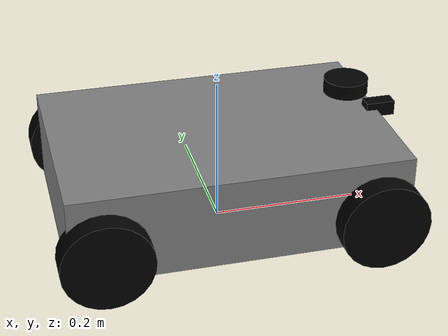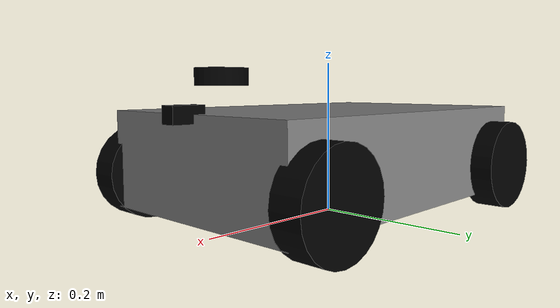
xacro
<?xml version="1.0"?>
<robot name="fusionrover" xmlns:xacro="http://www.ros.org/wiki/xacro">

  <material name="gray"><color rgba="0.5 0.5 0.5 1.0"/></material>
  <material name="black"><color rgba="0.0 0.0 0.0 1.0"/></material>

  <xacro:property name="chassis_mass"   value="10.0"/>
  <xacro:property name="chassis_length" value="0.45"/>
  <xacro:property name="chassis_width"  value="0.30"/>
  <xacro:property name="chassis_height" value="0.12"/>
  <xacro:property name="wheel_mass"     value="1.0"/>
  <xacro:property name="wheel_radius"   value="0.06"/>
  <xacro:property name="wheel_width"    value="0.04"/>
  <xacro:property name="wheel_x_offset" value="0.18"/>
  <xacro:property name="wheel_y_offset" value="0.16"/>
  <xacro:property name="ground_clearance" value="0.02"/>

  <link name="base_footprint"/>

  <joint name="base_footprint_joint" type="fixed">
    <parent link="base_footprint"/>
    <child link="base_link"/>
    <origin xyz="0 0 ${chassis_height/2 + ground_clearance}" rpy="0 0 0"/>
  </joint>

  <link name="base_link">
    <visual>
      <geometry><box size="${chassis_length} ${chassis_width} ${chassis_height}"/></geometry>
      <material name="gray"/>
    </visual>
    <collision>
      <geometry><box size="${chassis_length} ${chassis_width} ${chassis_height}"/></geometry>
    </collision>
    <inertial>
      <mass value="${chassis_mass}"/>
      <origin xyz="0 0 0" rpy="0 0 0"/>
      <inertia
        ixx="${(1/12) * chassis_mass * (chassis_width*chassis_width + chassis_height*chassis_height)}"
        ixy="0.0" ixz="0.0"
        iyy="${(1/12) * chassis_mass * (chassis_length*chassis_length + chassis_height*chassis_height)}"
        iyz="0.0"
        izz="${(1/12) * chassis_mass * (chassis_length*chassis_length + chassis_width*chassis_width)}"/>
    </inertial>
  </link>

  <link name="lidar_link">
    <visual>
      <geometry>
        <cylinder radius="0.03" length="0.02"/>
      </geometry>
      <material name="black"/>
    </visual>
    <collision>
      <geometry>
        <cylinder radius="0.03" length="0.02"/>
      </geometry>
    </collision>
    <inertial>
      <mass value="0.1"/>
      <origin xyz="0 0 0" rpy="0 0 0"/>
      <inertia ixx="0.0001" ixy="0.0" ixz="0.0"
               iyy="0.0001" iyz="0.0"
               izz="0.0001"/>
    </inertial>
  </link>

  <joint name="lidar_joint" type="fixed">
    <parent link="base_link"/>
    <child link="lidar_link"/>
    <origin xyz="0.18 0 0.10" rpy="0 0 0"/>
  </joint>

  <link name="ultrasonic_front_link">
    <visual>
      <geometry>
        <box size="0.04 0.02 0.02"/>
      </geometry>
      <material name="black"/>
    </visual>
    <collision>
      <geometry>
        <box size="0.04 0.02 0.02"/>
      </geometry>
    </collision>
    <inertial>
      <mass value="0.05"/>
      <origin xyz="0 0 0" rpy="0 0 0"/>
      <inertia ixx="0.00005" ixy="0.0" ixz="0.0"
               iyy="0.00005" iyz="0.0"
               izz="0.00005"/>
    </inertial>
  </link>

  <joint name="ultrasonic_front_joint" type="fixed">
    <parent link="base_link"/>
    <child link="ultrasonic_front_link"/>
    <origin xyz="0.23 0 0.06" rpy="0 0 0"/>
  </joint>

  <xacro:macro name="wheel" params="name x y">
    <link name="${name}">
      <visual>
        <origin rpy="${pi/2} 0 0" xyz="0 0 0"/>
        <geometry><cylinder radius="${wheel_radius}" length="${wheel_width}"/></geometry>
        <material name="black"/>
      </visual>
      <collision>
        <origin rpy="${pi/2} 0 0" xyz="0 0 0"/>
        <geometry><cylinder radius="${wheel_radius}" length="${wheel_width}"/></geometry>
      </collision>
      <inertial>
        <mass value="${wheel_mass}"/>
        <origin rpy="${pi/2} 0 0" xyz="0 0 0"/>
        <inertia
          ixx="${(1/12)*wheel_mass*(3*wheel_radius*wheel_radius + wheel_width*wheel_width)}"
          ixy="0.0" ixz="0.0"
          iyy="${(1/12)*wheel_mass*(3*wheel_radius*wheel_radius + wheel_width*wheel_width)}"
          iyz="0.0"
          izz="${(1/2)*wheel_mass*(wheel_radius*wheel_radius)}"/>
      </inertial>
    </link>

    <joint name="${name}_joint" type="continuous">
      <parent link="base_link"/>
      <child link="${name}"/>
      <origin xyz="${x} ${y} ${-(chassis_height/2 + ground_clearance - wheel_radius)}" rpy="0 0 0"/>
      <axis xyz="0 1 0"/>
    </joint>

    <gazebo reference="${name}">
      <material>Gazebo/Black</material>
      <mu1>1.0</mu1>
      <mu2>0.8</mu2>
      <minDepth>0.001</minDepth>
    </gazebo>
  </xacro:macro>

  <xacro:wheel name="front_left_wheel"  x="${wheel_x_offset}"  y="${wheel_y_offset}"/>
  <xacro:wheel name="front_right_wheel" x="${wheel_x_offset}"  y="-${wheel_y_offset}"/>
  <xacro:wheel name="rear_left_wheel"   x="-${wheel_x_offset}" y="${wheel_y_offset}"/>
  <xacro:wheel name="rear_right_wheel"  x="-${wheel_x_offset}" y="-${wheel_y_offset}"/>

  <ros2_control name="FusionRoverSystem" type="system">
    <hardware>
      <plugin>gazebo_ros2_control/GazeboSystem</plugin>
    </hardware>
    <joint name="front_left_wheel_joint">
      <command_interface name="velocity"/>
      <state_interface name="position"/><state_interface name="velocity"/>
    </joint>
    <joint name="front_right_wheel_joint">
      <command_interface name="velocity"/>
      <state_interface name="position"/><state_interface name="velocity"/>
    </joint>
    <joint name="rear_left_wheel_joint">
      <command_interface name="velocity"/>
      <state_interface name="position"/><state_interface name="velocity"/>
    </joint>
    <joint name="rear_right_wheel_joint">
      <command_interface name="velocity"/>
      <state_interface name="position"/><state_interface name="velocity"/>
    </joint>
  </ros2_control>

  <gazebo>
    <plugin name="gazebo_ros2_control" filename="libgazebo_ros2_control.so">
      <parameters>$(find fusion_rover)/config/diff_drive_controller.yaml</parameters>
    </plugin>
  </gazebo>

  <gazebo reference="lidar_link">
    <sensor name="lidar_sensor" type="ray">
      <pose>0 0 0 0 0 0</pose>
      <update_rate>10</update_rate>
      <visualize>true</visualize>
      <ray>
        <scan>
          <horizontal>
            <samples>360</samples>
            <resolution>1</resolution>
            <min_angle>-3.14159</min_angle>
            <max_angle>3.14159</max_angle>
          </horizontal>
        </scan>
        <range>
          <min>0.12</min>
          <max>10.0</max>
          <resolution>0.01</resolution>
        </range>
        <noise>
          <type>gaussian</type>
          <mean>0.0</mean>
          <stddev>0.01</stddev>
        </noise>
      </ray>

      <plugin name="gazebo_ros_laser" filename="libgazebo_ros_ray_sensor.so">
        <ros>
          <remapping>~/out:=scan</remapping>
        </ros>
        <output_type>sensor_msgs/LaserScan</output_type>
        <frame_name>lidar_link</frame_name>
      </plugin>
    </sensor>
  </gazebo>

  <gazebo reference="ultrasonic_front_link">
    <sensor name="ultrasonic_front_sensor" type="ray">
      <pose>0 0 0 0 0 0</pose>
      <update_rate>20</update_rate>
      <visualize>true</visualize>

      <ray>
        <scan>
          <horizontal>
            <samples>5</samples> <resolution>1</resolution>
            <min_angle>-0.1</min_angle>
            <max_angle>0.1</max_angle>
          </horizontal>
          <vertical>
             <samples>5</samples>
             <resolution>1</resolution>
             <min_angle>-0.1</min_angle>
             <max_angle>0.1</max_angle>
          </vertical>
        </scan>

        <range>
          <min>0.02</min>
          <max>4.0</max>
          <resolution>0.01</resolution>
        </range>

        <noise>
          <type>gaussian</type>
          <mean>0.0</mean>
          <stddev>0.005</stddev>
        </noise>
      </ray>

      <plugin name="gazebo_ros_range" filename="libgazebo_ros_ray_sensor.so">
        <ros>
          <remapping>~/out:=ultrasonic/front</remapping>
        </ros>
        <output_type>sensor_msgs/Range</output_type>
        <frame_name>ultrasonic_front_link</frame_name>
        <radiation_type>ultrasound</radiation_type>
      </plugin>
    </sensor>
  </gazebo>

</robot>
